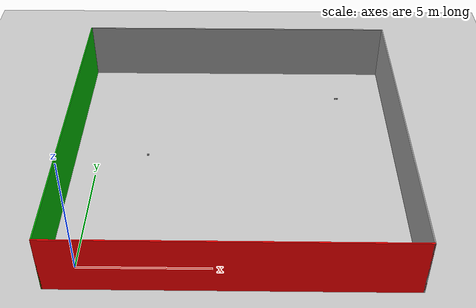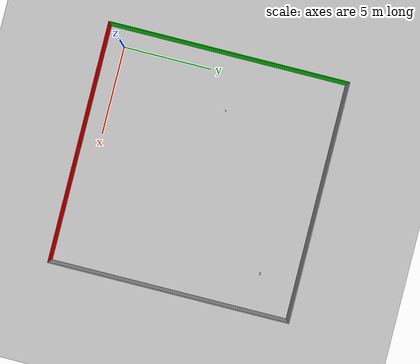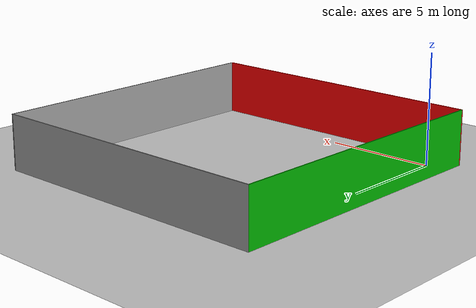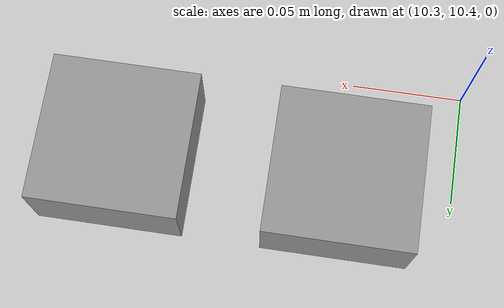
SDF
<sdf version="1.6">
 <world name="default">
  <light name="sun" type="directional">
   <pose>0 0 10 0 -0 0</pose>
   <diffuse>0.8 0.8 0.8 1</diffuse>
   <specular>0.2 0.2 0.2 1</specular>
   <attenuation>
    <range>1000</range>
    <constant>0.9</constant>
    <linear>0.01</linear>
    <quadratic>0.001</quadratic>
   </attenuation>
   <direction>-0.5 0.1 -0.9</direction>
  </light>
  <model name="ground_plane">
   <static>1</static>
   <link name="link">
    <collision name="collision">
     <geometry><plane><normal>0 0 1</normal><size>100 100</size></plane></geometry>
     <surface><friction><ode><mu>100</mu><mu2>50</mu2></ode></friction></surface>
    </collision>
    <visual name="visual">
     <cast_shadows>0</cast_shadows>
     <geometry><plane><normal>0 0 1</normal><size>100 100</size></plane></geometry>
     <material>
      <script><uri>file://media/materials/scripts/gazebo.material</uri><name>Gazebo/Grey</name></script>
     </material>
    </visual>
   </link>
  </model>
  <gravity>0 0 -9.8</gravity>
  <magnetic_field>6e-06 2.3e-05 -4.2e-05</magnetic_field>
  <atmosphere type="adiabatic"/>
  <physics name="default_physics" default="0" type="ode">
   <max_step_size>0.001</max_step_size>
   <real_time_factor>1</real_time_factor>
   <real_time_update_rate>1000</real_time_update_rate>
  </physics>
  <scene><ambient>0.4 0.4 0.4 1</ambient><background>0.7 0.7 0.7 1</background><shadows>1</shadows></scene>
  <spherical_coordinates>
   <surface_model>EARTH_WGS84</surface_model>
   <latitude_deg>0</latitude_deg>
   <longitude_deg>0</longitude_deg>
   <elevation>0</elevation>
   <heading_deg>0</heading_deg>
  </spherical_coordinates>
  <model name="WallsScaled0-05">
   <pose>5.75 5.75 0 0 -0 0</pose>
   <link name="Wall_15">
    <collision name="Wall_15_Collision">
     <geometry><box><size>13.55 0.05 2.5</size></box></geometry>
     <pose>0 0 1.25 0 -0 0</pose>
    </collision>
    <visual name="Wall_15_Visual">
     <pose>0 0 1.25 0 -0 0</pose>
     <geometry><box><size>13.55 0.05 2.5</size></box></geometry>
     <material>
      <script><uri>file://media/materials/scripts/gazebo.material</uri><name>Gazebo/Grey</name></script>
      <ambient>1 0 0 1</ambient>
     </material>
     <meta><layer>0</layer></meta>
    </visual>
    <pose>0 -6.75 0 0 -0 0</pose>
   </link>
   <link name="Wall_17">
    <collision name="Wall_17_Collision">
     <geometry><box><size>13.55 0.05 2.5</size></box></geometry>
     <pose>0 0 1.25 0 -0 0</pose>
    </collision>
    <visual name="Wall_17_Visual">
     <pose>0 0 1.25 0 -0 0</pose>
     <geometry><box><size>13.55 0.05 2.5</size></box></geometry>
     <material>
      <script><uri>file://media/materials/scripts/gazebo.material</uri><name>Gazebo/Grey</name></script>
      <ambient>0 0.666667 0 1</ambient>
     </material>
     <meta><layer>0</layer></meta>
    </visual>
    <pose>-6.75 0 0 0 -0 1.5708</pose>
   </link>
   <link name="Wall_19">
    <collision name="Wall_19_Collision">
     <geometry><box><size>13.55 0.05 2.5</size></box></geometry>
     <pose>0 0 1.25 0 -0 0</pose>
    </collision>
    <visual name="Wall_19_Visual">
     <pose>0 0 1.25 0 -0 0</pose>
     <geometry><box><size>13.55 0.05 2.5</size></box></geometry>
     <material>
      <script><uri>file://media/materials/scripts/gazebo.material</uri><name>Gazebo/Grey</name></script>
      <ambient>1 1 1 1</ambient>
     </material>
     <meta><layer>0</layer></meta>
    </visual>
    <pose>0 6.75 0 0 -0 0</pose>
   </link>
   <link name="Wall_21">
    <collision name="Wall_21_Collision">
     <geometry><box><size>13.55 0.05 2.5</size></box></geometry>
     <pose>0 0 1.25 0 -0 0</pose>
    </collision>
    <visual name="Wall_21_Visual">
     <pose>0 0 1.25 0 -0 0</pose>
     <geometry><box><size>13.55 0.05 2.5</size></box></geometry>
     <material>
      <script><uri>file://media/materials/scripts/gazebo.material</uri><name>Gazebo/Grey</name></script>
      <ambient>1 1 1 1</ambient>
     </material>
     <meta><layer>0</layer></meta>
    </visual>
    <pose>6.75 0 0 0 0 -1.5708</pose>
   </link>
   <static>1</static>
  </model>
  <model name="block-a">
   <pose>10.35 10.45 0 0 -0 0</pose>
   <link name="link">
    <inertial>
     <mass>1</mass>
     <inertia>
      <ixx>0.166667</ixx>
      <ixy>0</ixy>
      <ixz>0</ixz>
      <iyy>0.166667</iyy>
      <iyz>0</iyz>
      <izz>0.166667</izz>
     </inertia>
    </inertial>
    <collision name="collision">
     <geometry><box><size>0.065036 0.065036 0.065036</size></box></geometry>
     <surface><friction><ode><mu>10.0</mu><mu2>5.0</mu2></ode></friction></surface>
    </collision>
    <visual name="visual">
     <geometry><box><size>0.065036 0.065036 0.065036</size></box></geometry>
     <surface><friction><ode><mu>10.0</mu><mu2>5.0</mu2></ode></friction></surface>
     <material>
      <script><name>Gazebo/Grey</name><uri>file://media/materials/scripts/gazebo.material</uri></script>
     </material>
    </visual>
   </link>
  </model>
  <model name="block-b">
   <pose>2.05 6.35 0 0 -0 0</pose>
   <link name="link">
    <inertial>
     <mass>1</mass>
     <inertia>
      <ixx>0.166667</ixx>
      <ixy>0</ixy>
      <ixz>0</ixz>
      <iyy>0.166667</iyy>
      <iyz>0</iyz>
      <izz>0.166667</izz>
     </inertia>
    </inertial>
    <collision name="collision">
     <geometry><box><size>0.065036 0.065036 0.065036</size></box></geometry>
     <surface><friction><ode><mu>10.0</mu><mu2>5.0</mu2></ode></friction></surface>
    </collision>
    <visual name="visual">
     <geometry><box><size>0.065036 0.065036 0.065036</size></box></geometry>
     <surface><friction><ode><mu>10.0</mu><mu2>5.0</mu2></ode></friction></surface>
     <material>
      <script><name>Gazebo/Grey</name><uri>file://media/materials/scripts/gazebo.material</uri></script>
     </material>
    </visual>
   </link>
  </model>
  <model name="block-c">
   <pose>10.45 10.45 0 0 -0 0</pose>
   <link name="link">
    <inertial>
     <mass>1</mass>
     <inertia>
      <ixx>0.166667</ixx>
      <ixy>0</ixy>
      <ixz>0</ixz>
      <iyy>0.166667</iyy>
      <iyz>0</iyz>
      <izz>0.166667</izz>
     </inertia>
    </inertial>
    <collision name="collision">
     <geometry><box><size>0.065036 0.065036 0.065036</size></box></geometry>
     <surface><friction><ode><mu>10.0</mu><mu2>5.0</mu2></ode></friction></surface>
    </collision>
    <visual name="visual">
     <geometry><box><size>0.065036 0.065036 0.065036</size></box></geometry>
     <surface><friction><ode><mu>10.0</mu><mu2>5.0</mu2></ode></friction></surface>
     <material>
      <script><name>Gazebo/Grey</name><uri>file://media/materials/scripts/gazebo.material</uri></script>
     </material>
    </visual>
   </link>
  </model>
 </world>
</sdf>
